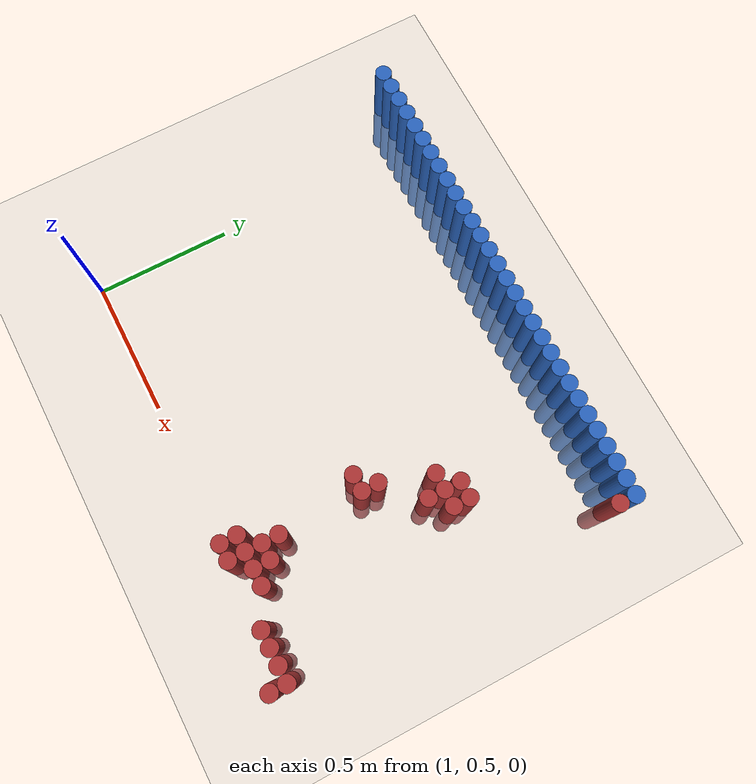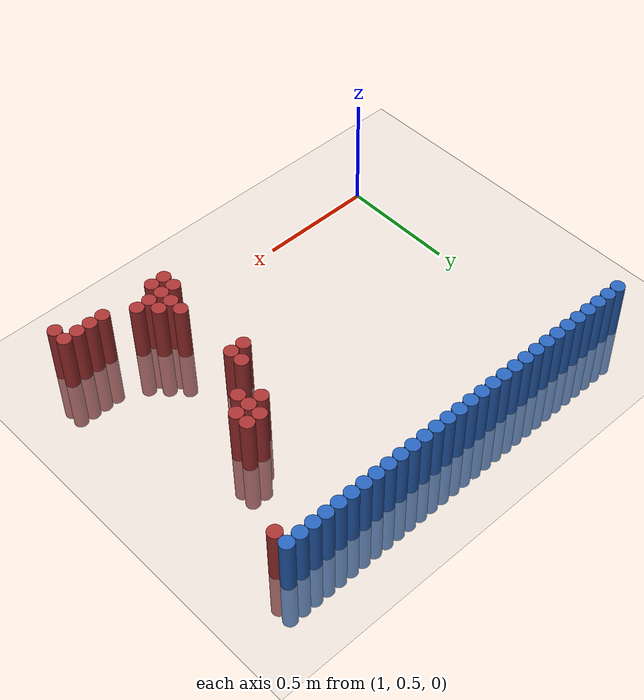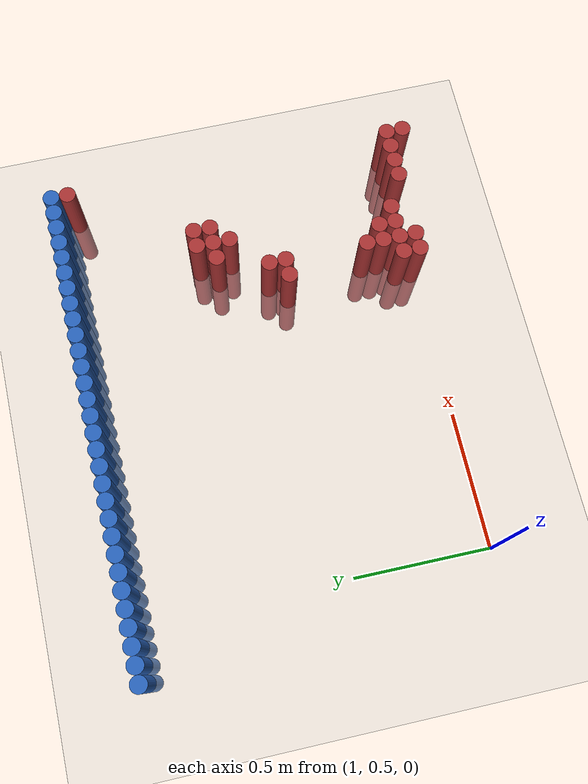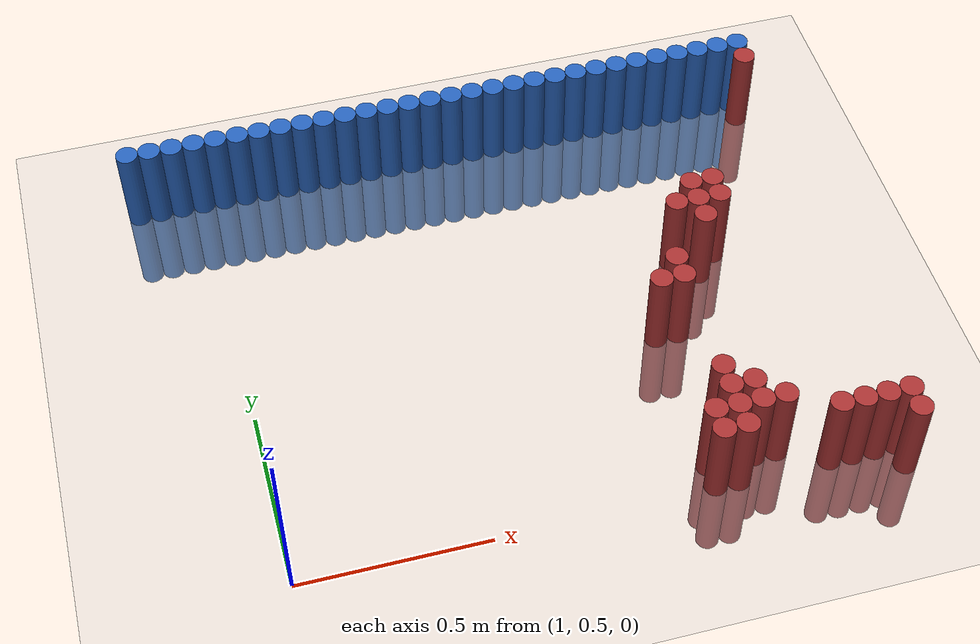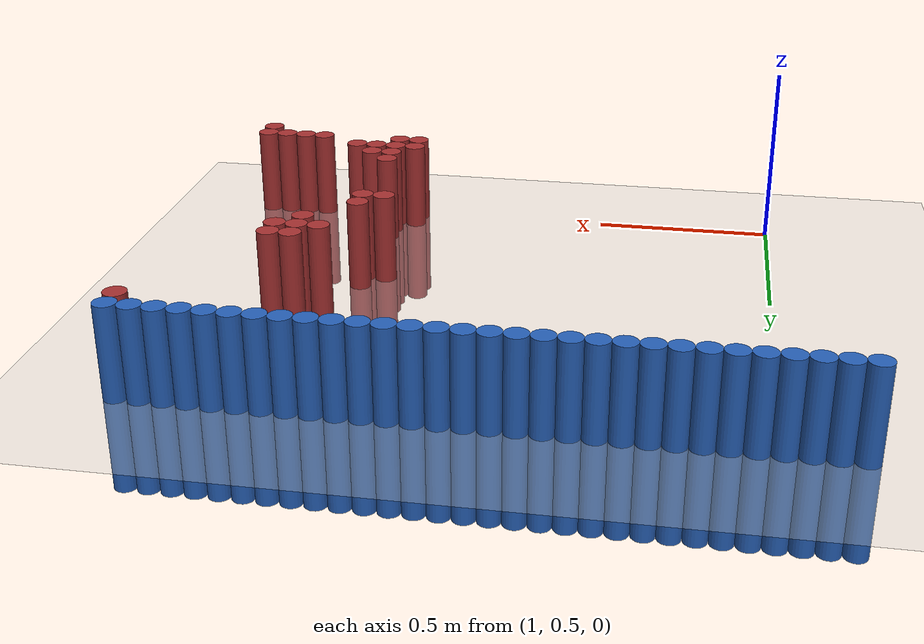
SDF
<sdf version="1.6">
 <world name="default">
  <model name="ground_plane">
   <static>1</static>
   <link name="link">
    <collision name="collision">
     <geometry><plane><normal>0 0 1</normal><size>100 100</size></plane></geometry>
     <surface><friction><ode><mu>100</mu><mu2>50</mu2></ode></friction></surface>
    </collision>
    <visual name="visual">
     <cast_shadows>0</cast_shadows>
     <geometry><plane><normal>0 0 1</normal><size>100 100</size></plane></geometry>
     <material>
      <script><uri>file://media/materials/scripts/gazebo.material</uri><name>Gazebo/Grey</name></script>
     </material>
    </visual>
   </link>
  </model>
  <model name="unit_cylinder_54">
   <static>1</static>
   <pose>0.810000 1.770000 0.000000 0.000000 0.000000 0.000000</pose>
   <link name="link">
    <inertial>
     <mass>1</mass>
     <inertia><ixx>0.145833</ixx><ixy>0</ixy><ixz>0</ixz><iyy>0.145833</iyy><iyz>0</iyz><izz>0.125</izz></inertia>
    </inertial>
    <collision name="collision">
     <geometry><cylinder><radius>0.030000</radius><length>0.5</length></cylinder></geometry>
    </collision>
    <visual name="visual">
     <geometry><cylinder><radius>0.030000</radius><length>0.5</length></cylinder></geometry>
     <material>
      <ambient>0.152000 0.379000 0.720000 1</ambient>
      <diffuse>0.152000 0.379000 0.720000 1</diffuse>
     </material>
     <material>
      <script><name>Gazebo/Grey</name><uri>file://media/materials/scripts/gazebo.material</uri></script>
     </material>
    </visual>
   </link>
  </model>
  <model name="unit_cylinder_56">
   <static>1</static>
   <pose>0.870000 1.770000 0.000000 0.000000 0.000000 0.000000</pose>
   <link name="link">
    <inertial>
     <mass>1</mass>
     <inertia><ixx>0.145833</ixx><ixy>0</ixy><ixz>0</ixz><iyy>0.145833</iyy><iyz>0</iyz><izz>0.125</izz></inertia>
    </inertial>
    <collision name="collision">
     <geometry><cylinder><radius>0.030000</radius><length>0.5</length></cylinder></geometry>
    </collision>
    <visual name="visual">
     <geometry><cylinder><radius>0.030000</radius><length>0.5</length></cylinder></geometry>
     <material>
      <ambient>0.152000 0.379000 0.720000 1</ambient>
      <diffuse>0.152000 0.379000 0.720000 1</diffuse>
     </material>
     <material>
      <script><name>Gazebo/Grey</name><uri>file://media/materials/scripts/gazebo.material</uri></script>
     </material>
    </visual>
   </link>
  </model>
  <model name="unit_cylinder_58">
   <static>1</static>
   <pose>0.930000 1.770000 0.000000 0.000000 0.000000 0.000000</pose>
   <link name="link">
    <inertial>
     <mass>1</mass>
     <inertia><ixx>0.145833</ixx><ixy>0</ixy><ixz>0</ixz><iyy>0.145833</iyy><iyz>0</iyz><izz>0.125</izz></inertia>
    </inertial>
    <collision name="collision">
     <geometry><cylinder><radius>0.030000</radius><length>0.5</length></cylinder></geometry>
    </collision>
    <visual name="visual">
     <geometry><cylinder><radius>0.030000</radius><length>0.5</length></cylinder></geometry>
     <material>
      <ambient>0.152000 0.379000 0.720000 1</ambient>
      <diffuse>0.152000 0.379000 0.720000 1</diffuse>
     </material>
     <material>
      <script><name>Gazebo/Grey</name><uri>file://media/materials/scripts/gazebo.material</uri></script>
     </material>
    </visual>
   </link>
  </model>
  <model name="unit_cylinder_60">
   <static>1</static>
   <pose>0.990000 1.770000 0.000000 0.000000 0.000000 0.000000</pose>
   <link name="link">
    <inertial>
     <mass>1</mass>
     <inertia><ixx>0.145833</ixx><ixy>0</ixy><ixz>0</ixz><iyy>0.145833</iyy><iyz>0</iyz><izz>0.125</izz></inertia>
    </inertial>
    <collision name="collision">
     <geometry><cylinder><radius>0.030000</radius><length>0.5</length></cylinder></geometry>
    </collision>
    <visual name="visual">
     <geometry><cylinder><radius>0.030000</radius><length>0.5</length></cylinder></geometry>
     <material>
      <ambient>0.152000 0.379000 0.720000 1</ambient>
      <diffuse>0.152000 0.379000 0.720000 1</diffuse>
     </material>
     <material>
      <script><name>Gazebo/Grey</name><uri>file://media/materials/scripts/gazebo.material</uri></script>
     </material>
    </visual>
   </link>
  </model>
  <model name="unit_cylinder_62">
   <static>1</static>
   <pose>1.050000 1.770000 0.000000 0.000000 0.000000 0.000000</pose>
   <link name="link">
    <inertial>
     <mass>1</mass>
     <inertia><ixx>0.145833</ixx><ixy>0</ixy><ixz>0</ixz><iyy>0.145833</iyy><iyz>0</iyz><izz>0.125</izz></inertia>
    </inertial>
    <collision name="collision">
     <geometry><cylinder><radius>0.030000</radius><length>0.5</length></cylinder></geometry>
    </collision>
    <visual name="visual">
     <geometry><cylinder><radius>0.030000</radius><length>0.5</length></cylinder></geometry>
     <material>
      <ambient>0.152000 0.379000 0.720000 1</ambient>
      <diffuse>0.152000 0.379000 0.720000 1</diffuse>
     </material>
     <material>
      <script><name>Gazebo/Grey</name><uri>file://media/materials/scripts/gazebo.material</uri></script>
     </material>
    </visual>
   </link>
  </model>
  <model name="unit_cylinder_64">
   <static>1</static>
   <pose>1.110000 1.770000 0.000000 0.000000 0.000000 0.000000</pose>
   <link name="link">
    <inertial>
     <mass>1</mass>
     <inertia><ixx>0.145833</ixx><ixy>0</ixy><ixz>0</ixz><iyy>0.145833</iyy><iyz>0</iyz><izz>0.125</izz></inertia>
    </inertial>
    <collision name="collision">
     <geometry><cylinder><radius>0.030000</radius><length>0.5</length></cylinder></geometry>
    </collision>
    <visual name="visual">
     <geometry><cylinder><radius>0.030000</radius><length>0.5</length></cylinder></geometry>
     <material>
      <ambient>0.152000 0.379000 0.720000 1</ambient>
      <diffuse>0.152000 0.379000 0.720000 1</diffuse>
     </material>
     <material>
      <script><name>Gazebo/Grey</name><uri>file://media/materials/scripts/gazebo.material</uri></script>
     </material>
    </visual>
   </link>
  </model>
  <model name="unit_cylinder_66">
   <static>1</static>
   <pose>1.170000 1.770000 0.000000 0.000000 0.000000 0.000000</pose>
   <link name="link">
    <inertial>
     <mass>1</mass>
     <inertia><ixx>0.145833</ixx><ixy>0</ixy><ixz>0</ixz><iyy>0.145833</iyy><iyz>0</iyz><izz>0.125</izz></inertia>
    </inertial>
    <collision name="collision">
     <geometry><cylinder><radius>0.030000</radius><length>0.5</length></cylinder></geometry>
    </collision>
    <visual name="visual">
     <geometry><cylinder><radius>0.030000</radius><length>0.5</length></cylinder></geometry>
     <material>
      <ambient>0.152000 0.379000 0.720000 1</ambient>
      <diffuse>0.152000 0.379000 0.720000 1</diffuse>
     </material>
     <material>
      <script><name>Gazebo/Grey</name><uri>file://media/materials/scripts/gazebo.material</uri></script>
     </material>
    </visual>
   </link>
  </model>
  <model name="unit_cylinder_68">
   <static>1</static>
   <pose>1.230000 1.770000 0.000000 0.000000 0.000000 0.000000</pose>
   <link name="link">
    <inertial>
     <mass>1</mass>
     <inertia><ixx>0.145833</ixx><ixy>0</ixy><ixz>0</ixz><iyy>0.145833</iyy><iyz>0</iyz><izz>0.125</izz></inertia>
    </inertial>
    <collision name="collision">
     <geometry><cylinder><radius>0.030000</radius><length>0.5</length></cylinder></geometry>
    </collision>
    <visual name="visual">
     <geometry><cylinder><radius>0.030000</radius><length>0.5</length></cylinder></geometry>
     <material>
      <ambient>0.152000 0.379000 0.720000 1</ambient>
      <diffuse>0.152000 0.379000 0.720000 1</diffuse>
     </material>
     <material>
      <script><name>Gazebo/Grey</name><uri>file://media/materials/scripts/gazebo.material</uri></script>
     </material>
    </visual>
   </link>
  </model>
  <model name="unit_cylinder_70">
   <static>1</static>
   <pose>1.290000 1.770000 0.000000 0.000000 0.000000 0.000000</pose>
   <link name="link">
    <inertial>
     <mass>1</mass>
     <inertia><ixx>0.145833</ixx><ixy>0</ixy><ixz>0</ixz><iyy>0.145833</iyy><iyz>0</iyz><izz>0.125</izz></inertia>
    </inertial>
    <collision name="collision">
     <geometry><cylinder><radius>0.030000</radius><length>0.5</length></cylinder></geometry>
    </collision>
    <visual name="visual">
     <geometry><cylinder><radius>0.030000</radius><length>0.5</length></cylinder></geometry>
     <material>
      <ambient>0.152000 0.379000 0.720000 1</ambient>
      <diffuse>0.152000 0.379000 0.720000 1</diffuse>
     </material>
     <material>
      <script><name>Gazebo/Grey</name><uri>file://media/materials/scripts/gazebo.material</uri></script>
     </material>
    </visual>
   </link>
  </model>
  <model name="unit_cylinder_72">
   <static>1</static>
   <pose>1.350000 1.770000 0.000000 0.000000 0.000000 0.000000</pose>
   <link name="link">
    <inertial>
     <mass>1</mass>
     <inertia><ixx>0.145833</ixx><ixy>0</ixy><ixz>0</ixz><iyy>0.145833</iyy><iyz>0</iyz><izz>0.125</izz></inertia>
    </inertial>
    <collision name="collision">
     <geometry><cylinder><radius>0.030000</radius><length>0.5</length></cylinder></geometry>
    </collision>
    <visual name="visual">
     <geometry><cylinder><radius>0.030000</radius><length>0.5</length></cylinder></geometry>
     <material>
      <ambient>0.152000 0.379000 0.720000 1</ambient>
      <diffuse>0.152000 0.379000 0.720000 1</diffuse>
     </material>
     <material>
      <script><name>Gazebo/Grey</name><uri>file://media/materials/scripts/gazebo.material</uri></script>
     </material>
    </visual>
   </link>
  </model>
  <model name="unit_cylinder_74">
   <static>1</static>
   <pose>1.410000 1.770000 0.000000 0.000000 0.000000 0.000000</pose>
   <link name="link">
    <inertial>
     <mass>1</mass>
     <inertia><ixx>0.145833</ixx><ixy>0</ixy><ixz>0</ixz><iyy>0.145833</iyy><iyz>0</iyz><izz>0.125</izz></inertia>
    </inertial>
    <collision name="collision">
     <geometry><cylinder><radius>0.030000</radius><length>0.5</length></cylinder></geometry>
    </collision>
    <visual name="visual">
     <geometry><cylinder><radius>0.030000</radius><length>0.5</length></cylinder></geometry>
     <material>
      <ambient>0.152000 0.379000 0.720000 1</ambient>
      <diffuse>0.152000 0.379000 0.720000 1</diffuse>
     </material>
     <material>
      <script><name>Gazebo/Grey</name><uri>file://media/materials/scripts/gazebo.material</uri></script>
     </material>
    </visual>
   </link>
  </model>
  <model name="unit_cylinder_76">
   <static>1</static>
   <pose>1.470000 1.770000 0.000000 0.000000 0.000000 0.000000</pose>
   <link name="link">
    <inertial>
     <mass>1</mass>
     <inertia><ixx>0.145833</ixx><ixy>0</ixy><ixz>0</ixz><iyy>0.145833</iyy><iyz>0</iyz><izz>0.125</izz></inertia>
    </inertial>
    <collision name="collision">
     <geometry><cylinder><radius>0.030000</radius><length>0.5</length></cylinder></geometry>
    </collision>
    <visual name="visual">
     <geometry><cylinder><radius>0.030000</radius><length>0.5</length></cylinder></geometry>
     <material>
      <ambient>0.152000 0.379000 0.720000 1</ambient>
      <diffuse>0.152000 0.379000 0.720000 1</diffuse>
     </material>
     <material>
      <script><name>Gazebo/Grey</name><uri>file://media/materials/scripts/gazebo.material</uri></script>
     </material>
    </visual>
   </link>
  </model>
  <model name="unit_cylinder_78">
   <static>1</static>
   <pose>1.530000 1.770000 0.000000 0.000000 0.000000 0.000000</pose>
   <link name="link">
    <inertial>
     <mass>1</mass>
     <inertia><ixx>0.145833</ixx><ixy>0</ixy><ixz>0</ixz><iyy>0.145833</iyy><iyz>0</iyz><izz>0.125</izz></inertia>
    </inertial>
    <collision name="collision">
     <geometry><cylinder><radius>0.030000</radius><length>0.5</length></cylinder></geometry>
    </collision>
    <visual name="visual">
     <geometry><cylinder><radius>0.030000</radius><length>0.5</length></cylinder></geometry>
     <material>
      <ambient>0.152000 0.379000 0.720000 1</ambient>
      <diffuse>0.152000 0.379000 0.720000 1</diffuse>
     </material>
     <material>
      <script><name>Gazebo/Grey</name><uri>file://media/materials/scripts/gazebo.material</uri></script>
     </material>
    </visual>
   </link>
  </model>
  <model name="unit_cylinder_80">
   <static>1</static>
   <pose>1.590000 1.770000 0.000000 0.000000 0.000000 0.000000</pose>
   <link name="link">
    <inertial>
     <mass>1</mass>
     <inertia><ixx>0.145833</ixx><ixy>0</ixy><ixz>0</ixz><iyy>0.145833</iyy><iyz>0</iyz><izz>0.125</izz></inertia>
    </inertial>
    <collision name="collision">
     <geometry><cylinder><radius>0.030000</radius><length>0.5</length></cylinder></geometry>
    </collision>
    <visual name="visual">
     <geometry><cylinder><radius>0.030000</radius><length>0.5</length></cylinder></geometry>
     <material>
      <ambient>0.152000 0.379000 0.720000 1</ambient>
      <diffuse>0.152000 0.379000 0.720000 1</diffuse>
     </material>
     <material>
      <script><name>Gazebo/Grey</name><uri>file://media/materials/scripts/gazebo.material</uri></script>
     </material>
    </visual>
   </link>
  </model>
  <model name="unit_cylinder_82">
   <static>1</static>
   <pose>1.650000 1.770000 0.000000 0.000000 0.000000 0.000000</pose>
   <link name="link">
    <inertial>
     <mass>1</mass>
     <inertia><ixx>0.145833</ixx><ixy>0</ixy><ixz>0</ixz><iyy>0.145833</iyy><iyz>0</iyz><izz>0.125</izz></inertia>
    </inertial>
    <collision name="collision">
     <geometry><cylinder><radius>0.030000</radius><length>0.5</length></cylinder></geometry>
    </collision>
    <visual name="visual">
     <geometry><cylinder><radius>0.030000</radius><length>0.5</length></cylinder></geometry>
     <material>
      <ambient>0.152000 0.379000 0.720000 1</ambient>
      <diffuse>0.152000 0.379000 0.720000 1</diffuse>
     </material>
     <material>
      <script><name>Gazebo/Grey</name><uri>file://media/materials/scripts/gazebo.material</uri></script>
     </material>
    </visual>
   </link>
  </model>
  <model name="unit_cylinder_84">
   <static>1</static>
   <pose>1.710000 1.770000 0.000000 0.000000 0.000000 0.000000</pose>
   <link name="link">
    <inertial>
     <mass>1</mass>
     <inertia><ixx>0.145833</ixx><ixy>0</ixy><ixz>0</ixz><iyy>0.145833</iyy><iyz>0</iyz><izz>0.125</izz></inertia>
    </inertial>
    <collision name="collision">
     <geometry><cylinder><radius>0.030000</radius><length>0.5</length></cylinder></geometry>
    </collision>
    <visual name="visual">
     <geometry><cylinder><radius>0.030000</radius><length>0.5</length></cylinder></geometry>
     <material>
      <ambient>0.152000 0.379000 0.720000 1</ambient>
      <diffuse>0.152000 0.379000 0.720000 1</diffuse>
     </material>
     <material>
      <script><name>Gazebo/Grey</name><uri>file://media/materials/scripts/gazebo.material</uri></script>
     </material>
    </visual>
   </link>
  </model>
  <model name="unit_cylinder_86">
   <static>1</static>
   <pose>1.770000 1.770000 0.000000 0.000000 0.000000 0.000000</pose>
   <link name="link">
    <inertial>
     <mass>1</mass>
     <inertia><ixx>0.145833</ixx><ixy>0</ixy><ixz>0</ixz><iyy>0.145833</iyy><iyz>0</iyz><izz>0.125</izz></inertia>
    </inertial>
    <collision name="collision">
     <geometry><cylinder><radius>0.030000</radius><length>0.5</length></cylinder></geometry>
    </collision>
    <visual name="visual">
     <geometry><cylinder><radius>0.030000</radius><length>0.5</length></cylinder></geometry>
     <material>
      <ambient>0.152000 0.379000 0.720000 1</ambient>
      <diffuse>0.152000 0.379000 0.720000 1</diffuse>
     </material>
     <material>
      <script><name>Gazebo/Grey</name><uri>file://media/materials/scripts/gazebo.material</uri></script>
     </material>
    </visual>
   </link>
  </model>
  <model name="unit_cylinder_88">
   <static>1</static>
   <pose>1.830000 1.770000 0.000000 0.000000 0.000000 0.000000</pose>
   <link name="link">
    <inertial>
     <mass>1</mass>
     <inertia><ixx>0.145833</ixx><ixy>0</ixy><ixz>0</ixz><iyy>0.145833</iyy><iyz>0</iyz><izz>0.125</izz></inertia>
    </inertial>
    <collision name="collision">
     <geometry><cylinder><radius>0.030000</radius><length>0.5</length></cylinder></geometry>
    </collision>
    <visual name="visual">
     <geometry><cylinder><radius>0.030000</radius><length>0.5</length></cylinder></geometry>
     <material>
      <ambient>0.152000 0.379000 0.720000 1</ambient>
      <diffuse>0.152000 0.379000 0.720000 1</diffuse>
     </material>
     <material>
      <script><name>Gazebo/Grey</name><uri>file://media/materials/scripts/gazebo.material</uri></script>
     </material>
    </visual>
   </link>
  </model>
  <model name="unit_cylinder_90">
   <static>1</static>
   <pose>1.890000 1.770000 0.000000 0.000000 0.000000 0.000000</pose>
   <link name="link">
    <inertial>
     <mass>1</mass>
     <inertia><ixx>0.145833</ixx><ixy>0</ixy><ixz>0</ixz><iyy>0.145833</iyy><iyz>0</iyz><izz>0.125</izz></inertia>
    </inertial>
    <collision name="collision">
     <geometry><cylinder><radius>0.030000</radius><length>0.5</length></cylinder></geometry>
    </collision>
    <visual name="visual">
     <geometry><cylinder><radius>0.030000</radius><length>0.5</length></cylinder></geometry>
     <material>
      <ambient>0.152000 0.379000 0.720000 1</ambient>
      <diffuse>0.152000 0.379000 0.720000 1</diffuse>
     </material>
     <material>
      <script><name>Gazebo/Grey</name><uri>file://media/materials/scripts/gazebo.material</uri></script>
     </material>
    </visual>
   </link>
  </model>
  <model name="unit_cylinder_92">
   <static>1</static>
   <pose>1.950000 1.770000 0.000000 0.000000 0.000000 0.000000</pose>
   <link name="link">
    <inertial>
     <mass>1</mass>
     <inertia><ixx>0.145833</ixx><ixy>0</ixy><ixz>0</ixz><iyy>0.145833</iyy><iyz>0</iyz><izz>0.125</izz></inertia>
    </inertial>
    <collision name="collision">
     <geometry><cylinder><radius>0.030000</radius><length>0.5</length></cylinder></geometry>
    </collision>
    <visual name="visual">
     <geometry><cylinder><radius>0.030000</radius><length>0.5</length></cylinder></geometry>
     <material>
      <ambient>0.152000 0.379000 0.720000 1</ambient>
      <diffuse>0.152000 0.379000 0.720000 1</diffuse>
     </material>
     <material>
      <script><name>Gazebo/Grey</name><uri>file://media/materials/scripts/gazebo.material</uri></script>
     </material>
    </visual>
   </link>
  </model>
  <model name="unit_cylinder_94">
   <static>1</static>
   <pose>2.010000 1.770000 0.000000 0.000000 0.000000 0.000000</pose>
   <link name="link">
    <inertial>
     <mass>1</mass>
     <inertia><ixx>0.145833</ixx><ixy>0</ixy><ixz>0</ixz><iyy>0.145833</iyy><iyz>0</iyz><izz>0.125</izz></inertia>
    </inertial>
    <collision name="collision">
     <geometry><cylinder><radius>0.030000</radius><length>0.5</length></cylinder></geometry>
    </collision>
    <visual name="visual">
     <geometry><cylinder><radius>0.030000</radius><length>0.5</length></cylinder></geometry>
     <material>
      <ambient>0.152000 0.379000 0.720000 1</ambient>
      <diffuse>0.152000 0.379000 0.720000 1</diffuse>
     </material>
     <material>
      <script><name>Gazebo/Grey</name><uri>file://media/materials/scripts/gazebo.material</uri></script>
     </material>
    </visual>
   </link>
  </model>
  <model name="unit_cylinder_95">
   <static>1</static>
   <pose>2.070000 1.770000 0.000000 0.000000 0.000000 0.000000</pose>
   <link name="link">
    <inertial>
     <mass>1</mass>
     <inertia><ixx>0.145833</ixx><ixy>0</ixy><ixz>0</ixz><iyy>0.145833</iyy><iyz>0</iyz><izz>0.125</izz></inertia>
    </inertial>
    <collision name="collision">
     <geometry><cylinder><radius>0.030000</radius><length>0.5</length></cylinder></geometry>
    </collision>
    <visual name="visual">
     <geometry><cylinder><radius>0.030000</radius><length>0.5</length></cylinder></geometry>
     <material>
      <ambient>0.152000 0.379000 0.720000 1</ambient>
      <diffuse>0.152000 0.379000 0.720000 1</diffuse>
     </material>
     <material>
      <script><name>Gazebo/Grey</name><uri>file://media/materials/scripts/gazebo.material</uri></script>
     </material>
    </visual>
   </link>
  </model>
  <model name="unit_cylinder_96">
   <static>1</static>
   <pose>2.130000 1.770000 0.000000 0.000000 0.000000 0.000000</pose>
   <link name="link">
    <inertial>
     <mass>1</mass>
     <inertia><ixx>0.145833</ixx><ixy>0</ixy><ixz>0</ixz><iyy>0.145833</iyy><iyz>0</iyz><izz>0.125</izz></inertia>
    </inertial>
    <collision name="collision">
     <geometry><cylinder><radius>0.030000</radius><length>0.5</length></cylinder></geometry>
    </collision>
    <visual name="visual">
     <geometry><cylinder><radius>0.030000</radius><length>0.5</length></cylinder></geometry>
     <material>
      <ambient>0.152000 0.379000 0.720000 1</ambient>
      <diffuse>0.152000 0.379000 0.720000 1</diffuse>
     </material>
     <material>
      <script><name>Gazebo/Grey</name><uri>file://media/materials/scripts/gazebo.material</uri></script>
     </material>
    </visual>
   </link>
  </model>
  <model name="unit_cylinder_97">
   <static>1</static>
   <pose>2.190000 1.770000 0.000000 0.000000 0.000000 0.000000</pose>
   <link name="link">
    <inertial>
     <mass>1</mass>
     <inertia><ixx>0.145833</ixx><ixy>0</ixy><ixz>0</ixz><iyy>0.145833</iyy><iyz>0</iyz><izz>0.125</izz></inertia>
    </inertial>
    <collision name="collision">
     <geometry><cylinder><radius>0.030000</radius><length>0.5</length></cylinder></geometry>
    </collision>
    <visual name="visual">
     <geometry><cylinder><radius>0.030000</radius><length>0.5</length></cylinder></geometry>
     <material>
      <ambient>0.152000 0.379000 0.720000 1</ambient>
      <diffuse>0.152000 0.379000 0.720000 1</diffuse>
     </material>
     <material>
      <script><name>Gazebo/Grey</name><uri>file://media/materials/scripts/gazebo.material</uri></script>
     </material>
    </visual>
   </link>
  </model>
  <model name="unit_cylinder_98">
   <static>1</static>
   <pose>2.250000 1.770000 0.000000 0.000000 0.000000 0.000000</pose>
   <link name="link">
    <inertial>
     <mass>1</mass>
     <inertia><ixx>0.145833</ixx><ixy>0</ixy><ixz>0</ixz><iyy>0.145833</iyy><iyz>0</iyz><izz>0.125</izz></inertia>
    </inertial>
    <collision name="collision">
     <geometry><cylinder><radius>0.030000</radius><length>0.5</length></cylinder></geometry>
    </collision>
    <visual name="visual">
     <geometry><cylinder><radius>0.030000</radius><length>0.5</length></cylinder></geometry>
     <material>
      <ambient>0.152000 0.379000 0.720000 1</ambient>
      <diffuse>0.152000 0.379000 0.720000 1</diffuse>
     </material>
     <material>
      <script><name>Gazebo/Grey</name><uri>file://media/materials/scripts/gazebo.material</uri></script>
     </material>
    </visual>
   </link>
  </model>
  <model name="unit_cylinder_99">
   <static>1</static>
   <pose>2.310000 1.770000 0.000000 0.000000 0.000000 0.000000</pose>
   <link name="link">
    <inertial>
     <mass>1</mass>
     <inertia><ixx>0.145833</ixx><ixy>0</ixy><ixz>0</ixz><iyy>0.145833</iyy><iyz>0</iyz><izz>0.125</izz></inertia>
    </inertial>
    <collision name="collision">
     <geometry><cylinder><radius>0.030000</radius><length>0.5</length></cylinder></geometry>
    </collision>
    <visual name="visual">
     <geometry><cylinder><radius>0.030000</radius><length>0.5</length></cylinder></geometry>
     <material>
      <ambient>0.152000 0.379000 0.720000 1</ambient>
      <diffuse>0.152000 0.379000 0.720000 1</diffuse>
     </material>
     <material>
      <script><name>Gazebo/Grey</name><uri>file://media/materials/scripts/gazebo.material</uri></script>
     </material>
    </visual>
   </link>
  </model>
  <model name="unit_cylinder_100">
   <static>1</static>
   <pose>2.370000 1.770000 0.000000 0.000000 0.000000 0.000000</pose>
   <link name="link">
    <inertial>
     <mass>1</mass>
     <inertia><ixx>0.145833</ixx><ixy>0</ixy><ixz>0</ixz><iyy>0.145833</iyy><iyz>0</iyz><izz>0.125</izz></inertia>
    </inertial>
    <collision name="collision">
     <geometry><cylinder><radius>0.030000</radius><length>0.5</length></cylinder></geometry>
    </collision>
    <visual name="visual">
     <geometry><cylinder><radius>0.030000</radius><length>0.5</length></cylinder></geometry>
     <material>
      <ambient>0.152000 0.379000 0.720000 1</ambient>
      <diffuse>0.152000 0.379000 0.720000 1</diffuse>
     </material>
     <material>
      <script><name>Gazebo/Grey</name><uri>file://media/materials/scripts/gazebo.material</uri></script>
     </material>
    </visual>
   </link>
  </model>
  <model name="unit_cylinder_101">
   <static>1</static>
   <pose>2.430000 1.770000 0.000000 0.000000 0.000000 0.000000</pose>
   <link name="link">
    <inertial>
     <mass>1</mass>
     <inertia><ixx>0.145833</ixx><ixy>0</ixy><ixz>0</ixz><iyy>0.145833</iyy><iyz>0</iyz><izz>0.125</izz></inertia>
    </inertial>
    <collision name="collision">
     <geometry><cylinder><radius>0.030000</radius><length>0.5</length></cylinder></geometry>
    </collision>
    <visual name="visual">
     <geometry><cylinder><radius>0.030000</radius><length>0.5</length></cylinder></geometry>
     <material>
      <ambient>0.152000 0.379000 0.720000 1</ambient>
      <diffuse>0.152000 0.379000 0.720000 1</diffuse>
     </material>
     <material>
      <script><name>Gazebo/Grey</name><uri>file://media/materials/scripts/gazebo.material</uri></script>
     </material>
    </visual>
   </link>
  </model>
  <model name="unit_cylinder_102">
   <static>1</static>
   <pose>2.490000 1.770000 0.000000 0.000000 0.000000 0.000000</pose>
   <link name="link">
    <inertial>
     <mass>1</mass>
     <inertia><ixx>0.145833</ixx><ixy>0</ixy><ixz>0</ixz><iyy>0.145833</iyy><iyz>0</iyz><izz>0.125</izz></inertia>
    </inertial>
    <collision name="collision">
     <geometry><cylinder><radius>0.030000</radius><length>0.5</length></cylinder></geometry>
    </collision>
    <visual name="visual">
     <geometry><cylinder><radius>0.030000</radius><length>0.5</length></cylinder></geometry>
     <material>
      <ambient>0.152000 0.379000 0.720000 1</ambient>
      <diffuse>0.152000 0.379000 0.720000 1</diffuse>
     </material>
     <material>
      <script><name>Gazebo/Grey</name><uri>file://media/materials/scripts/gazebo.material</uri></script>
     </material>
    </visual>
   </link>
  </model>
  <model name="unit_cylinder_103">
   <static>1</static>
   <pose>2.550000 1.770000 0.000000 0.000000 0.000000 0.000000</pose>
   <link name="link">
    <inertial>
     <mass>1</mass>
     <inertia><ixx>0.145833</ixx><ixy>0</ixy><ixz>0</ixz><iyy>0.145833</iyy><iyz>0</iyz><izz>0.125</izz></inertia>
    </inertial>
    <collision name="collision">
     <geometry><cylinder><radius>0.030000</radius><length>0.5</length></cylinder></geometry>
    </collision>
    <visual name="visual">
     <geometry><cylinder><radius>0.030000</radius><length>0.5</length></cylinder></geometry>
     <material>
      <ambient>0.152000 0.379000 0.720000 1</ambient>
      <diffuse>0.152000 0.379000 0.720000 1</diffuse>
     </material>
     <material>
      <script><name>Gazebo/Grey</name><uri>file://media/materials/scripts/gazebo.material</uri></script>
     </material>
    </visual>
   </link>
  </model>
  <model name="unit_cylinder_125">
   <static>1</static>
   <pose>2.550000 1.710000 0.000000 0.000000 0.000000 0.000000</pose>
   <link name="link">
    <inertial>
     <mass>1</mass>
     <inertia><ixx>0.145833</ixx><ixy>0</ixy><ixz>0</ixz><iyy>0.145833</iyy><iyz>0</iyz><izz>0.125</izz></inertia>
    </inertial>
    <collision name="collision">
     <geometry><cylinder><radius>0.030000</radius><length>0.5</length></cylinder></geometry>
    </collision>
    <visual name="visual">
     <geometry><cylinder><radius>0.030000</radius><length>0.5</length></cylinder></geometry>
     <material>
      <ambient>0.648000 0.192000 0.192000 1</ambient>
      <diffuse>0.648000 0.192000 0.192000 1</diffuse>
     </material>
     <material>
      <script><name>Gazebo/Grey</name><uri>file://media/materials/scripts/gazebo.material</uri></script>
     </material>
    </visual>
   </link>
  </model>
  <model name="unit_cylinder_163">
   <static>1</static>
   <pose>2.250000 1.290000 0.000000 0.000000 0.000000 0.000000</pose>
   <link name="link">
    <inertial>
     <mass>1</mass>
     <inertia><ixx>0.145833</ixx><ixy>0</ixy><ixz>0</ixz><iyy>0.145833</iyy><iyz>0</iyz><izz>0.125</izz></inertia>
    </inertial>
    <collision name="collision">
     <geometry><cylinder><radius>0.030000</radius><length>0.5</length></cylinder></geometry>
    </collision>
    <visual name="visual">
     <geometry><cylinder><radius>0.030000</radius><length>0.5</length></cylinder></geometry>
     <material>
      <ambient>0.648000 0.192000 0.192000 1</ambient>
      <diffuse>0.648000 0.192000 0.192000 1</diffuse>
     </material>
     <material>
      <script><name>Gazebo/Grey</name><uri>file://media/materials/scripts/gazebo.material</uri></script>
     </material>
    </visual>
   </link>
  </model>
  <model name="unit_cylinder_164">
   <static>1</static>
   <pose>2.310000 1.290000 0.000000 0.000000 0.000000 0.000000</pose>
   <link name="link">
    <inertial>
     <mass>1</mass>
     <inertia><ixx>0.145833</ixx><ixy>0</ixy><ixz>0</ixz><iyy>0.145833</iyy><iyz>0</iyz><izz>0.125</izz></inertia>
    </inertial>
    <collision name="collision">
     <geometry><cylinder><radius>0.030000</radius><length>0.5</length></cylinder></geometry>
    </collision>
    <visual name="visual">
     <geometry><cylinder><radius>0.030000</radius><length>0.5</length></cylinder></geometry>
     <material>
      <ambient>0.648000 0.192000 0.192000 1</ambient>
      <diffuse>0.648000 0.192000 0.192000 1</diffuse>
     </material>
     <material>
      <script><name>Gazebo/Grey</name><uri>file://media/materials/scripts/gazebo.material</uri></script>
     </material>
    </visual>
   </link>
  </model>
  <model name="unit_cylinder_171">
   <static>1</static>
   <pose>2.190000 1.230000 0.000000 0.000000 0.000000 0.000000</pose>
   <link name="link">
    <inertial>
     <mass>1</mass>
     <inertia><ixx>0.145833</ixx><ixy>0</ixy><ixz>0</ixz><iyy>0.145833</iyy><iyz>0</iyz><izz>0.125</izz></inertia>
    </inertial>
    <collision name="collision">
     <geometry><cylinder><radius>0.030000</radius><length>0.5</length></cylinder></geometry>
    </collision>
    <visual name="visual">
     <geometry><cylinder><radius>0.030000</radius><length>0.5</length></cylinder></geometry>
     <material>
      <ambient>0.648000 0.192000 0.192000 1</ambient>
      <diffuse>0.648000 0.192000 0.192000 1</diffuse>
     </material>
     <material>
      <script><name>Gazebo/Grey</name><uri>file://media/materials/scripts/gazebo.material</uri></script>
     </material>
    </visual>
   </link>
  </model>
  <model name="unit_cylinder_172">
   <static>1</static>
   <pose>2.250000 1.230000 0.000000 0.000000 0.000000 0.000000</pose>
   <link name="link">
    <inertial>
     <mass>1</mass>
     <inertia><ixx>0.145833</ixx><ixy>0</ixy><ixz>0</ixz><iyy>0.145833</iyy><iyz>0</iyz><izz>0.125</izz></inertia>
    </inertial>
    <collision name="collision">
     <geometry><cylinder><radius>0.030000</radius><length>0.5</length></cylinder></geometry>
    </collision>
    <visual name="visual">
     <geometry><cylinder><radius>0.030000</radius><length>0.5</length></cylinder></geometry>
     <material>
      <ambient>0.648000 0.192000 0.192000 1</ambient>
      <diffuse>0.648000 0.192000 0.192000 1</diffuse>
     </material>
     <material>
      <script><name>Gazebo/Grey</name><uri>file://media/materials/scripts/gazebo.material</uri></script>
     </material>
    </visual>
   </link>
  </model>
  <model name="unit_cylinder_173">
   <static>1</static>
   <pose>2.310000 1.230000 0.000000 0.000000 0.000000 0.000000</pose>
   <link name="link">
    <inertial>
     <mass>1</mass>
     <inertia><ixx>0.145833</ixx><ixy>0</ixy><ixz>0</ixz><iyy>0.145833</iyy><iyz>0</iyz><izz>0.125</izz></inertia>
    </inertial>
    <collision name="collision">
     <geometry><cylinder><radius>0.030000</radius><length>0.5</length></cylinder></geometry>
    </collision>
    <visual name="visual">
     <geometry><cylinder><radius>0.030000</radius><length>0.5</length></cylinder></geometry>
     <material>
      <ambient>0.648000 0.192000 0.192000 1</ambient>
      <diffuse>0.648000 0.192000 0.192000 1</diffuse>
     </material>
     <material>
      <script><name>Gazebo/Grey</name><uri>file://media/materials/scripts/gazebo.material</uri></script>
     </material>
    </visual>
   </link>
  </model>
  <model name="unit_cylinder_176">
   <static>1</static>
   <pose>2.250000 1.170000 0.000000 0.000000 0.000000 0.000000</pose>
   <link name="link">
    <inertial>
     <mass>1</mass>
     <inertia><ixx>0.145833</ixx><ixy>0</ixy><ixz>0</ixz><iyy>0.145833</iyy><iyz>0</iyz><izz>0.125</izz></inertia>
    </inertial>
    <collision name="collision">
     <geometry><cylinder><radius>0.030000</radius><length>0.5</length></cylinder></geometry>
    </collision>
    <visual name="visual">
     <geometry><cylinder><radius>0.030000</radius><length>0.5</length></cylinder></geometry>
     <material>
      <ambient>0.648000 0.192000 0.192000 1</ambient>
      <diffuse>0.648000 0.192000 0.192000 1</diffuse>
     </material>
     <material>
      <script><name>Gazebo/Grey</name><uri>file://media/materials/scripts/gazebo.material</uri></script>
     </material>
    </visual>
   </link>
  </model>
  <model name="unit_cylinder_182">
   <static>1</static>
   <pose>2.130000 1.050000 0.000000 0.000000 0.000000 0.000000</pose>
   <link name="link">
    <inertial>
     <mass>1</mass>
     <inertia><ixx>0.145833</ixx><ixy>0</ixy><ixz>0</ixz><iyy>0.145833</iyy><iyz>0</iyz><izz>0.125</izz></inertia>
    </inertial>
    <collision name="collision">
     <geometry><cylinder><radius>0.030000</radius><length>0.5</length></cylinder></geometry>
    </collision>
    <visual name="visual">
     <geometry><cylinder><radius>0.030000</radius><length>0.5</length></cylinder></geometry>
     <material>
      <ambient>0.648000 0.192000 0.192000 1</ambient>
      <diffuse>0.648000 0.192000 0.192000 1</diffuse>
     </material>
     <material>
      <script><name>Gazebo/Grey</name><uri>file://media/materials/scripts/gazebo.material</uri></script>
     </material>
    </visual>
   </link>
  </model>
  <model name="unit_cylinder_184">
   <static>1</static>
   <pose>2.070000 0.990000 0.000000 0.000000 0.000000 0.000000</pose>
   <link name="link">
    <inertial>
     <mass>1</mass>
     <inertia><ixx>0.145833</ixx><ixy>0</ixy><ixz>0</ixz><iyy>0.145833</iyy><iyz>0</iyz><izz>0.125</izz></inertia>
    </inertial>
    <collision name="collision">
     <geometry><cylinder><radius>0.030000</radius><length>0.5</length></cylinder></geometry>
    </collision>
    <visual name="visual">
     <geometry><cylinder><radius>0.030000</radius><length>0.5</length></cylinder></geometry>
     <material>
      <ambient>0.648000 0.192000 0.192000 1</ambient>
      <diffuse>0.648000 0.192000 0.192000 1</diffuse>
     </material>
     <material>
      <script><name>Gazebo/Grey</name><uri>file://media/materials/scripts/gazebo.material</uri></script>
     </material>
    </visual>
   </link>
  </model>
  <model name="unit_cylinder_185">
   <static>1</static>
   <pose>2.130000 0.990000 0.000000 0.000000 0.000000 0.000000</pose>
   <link name="link">
    <inertial>
     <mass>1</mass>
     <inertia><ixx>0.145833</ixx><ixy>0</ixy><ixz>0</ixz><iyy>0.145833</iyy><iyz>0</iyz><izz>0.125</izz></inertia>
    </inertial>
    <collision name="collision">
     <geometry><cylinder><radius>0.030000</radius><length>0.5</length></cylinder></geometry>
    </collision>
    <visual name="visual">
     <geometry><cylinder><radius>0.030000</radius><length>0.5</length></cylinder></geometry>
     <material>
      <ambient>0.648000 0.192000 0.192000 1</ambient>
      <diffuse>0.648000 0.192000 0.192000 1</diffuse>
     </material>
     <material>
      <script><name>Gazebo/Grey</name><uri>file://media/materials/scripts/gazebo.material</uri></script>
     </material>
    </visual>
   </link>
  </model>
  <model name="unit_cylinder_198">
   <static>1</static>
   <pose>2.130000 0.690000 0.000000 0.000000 0.000000 0.000000</pose>
   <link name="link">
    <inertial>
     <mass>1</mass>
     <inertia><ixx>0.145833</ixx><ixy>0</ixy><ixz>0</ixz><iyy>0.145833</iyy><iyz>0</iyz><izz>0.125</izz></inertia>
    </inertial>
    <collision name="collision">
     <geometry><cylinder><radius>0.030000</radius><length>0.5</length></cylinder></geometry>
    </collision>
    <visual name="visual">
     <geometry><cylinder><radius>0.030000</radius><length>0.5</length></cylinder></geometry>
     <material>
      <ambient>0.648000 0.192000 0.192000 1</ambient>
      <diffuse>0.648000 0.192000 0.192000 1</diffuse>
     </material>
     <material>
      <script><name>Gazebo/Grey</name><uri>file://media/materials/scripts/gazebo.material</uri></script>
     </material>
    </visual>
   </link>
  </model>
  <model name="unit_cylinder_204">
   <static>1</static>
   <pose>2.130000 0.630000 0.000000 0.000000 0.000000 0.000000</pose>
   <link name="link">
    <inertial>
     <mass>1</mass>
     <inertia><ixx>0.145833</ixx><ixy>0</ixy><ixz>0</ixz><iyy>0.145833</iyy><iyz>0</iyz><izz>0.125</izz></inertia>
    </inertial>
    <collision name="collision">
     <geometry><cylinder><radius>0.030000</radius><length>0.5</length></cylinder></geometry>
    </collision>
    <visual name="visual">
     <geometry><cylinder><radius>0.030000</radius><length>0.5</length></cylinder></geometry>
     <material>
      <ambient>0.648000 0.192000 0.192000 1</ambient>
      <diffuse>0.648000 0.192000 0.192000 1</diffuse>
     </material>
     <material>
      <script><name>Gazebo/Grey</name><uri>file://media/materials/scripts/gazebo.material</uri></script>
     </material>
    </visual>
   </link>
  </model>
  <model name="unit_cylinder_205">
   <static>1</static>
   <pose>2.190000 0.630000 0.000000 0.000000 0.000000 0.000000</pose>
   <link name="link">
    <inertial>
     <mass>1</mass>
     <inertia><ixx>0.145833</ixx><ixy>0</ixy><ixz>0</ixz><iyy>0.145833</iyy><iyz>0</iyz><izz>0.125</izz></inertia>
    </inertial>
    <collision name="collision">
     <geometry><cylinder><radius>0.030000</radius><length>0.5</length></cylinder></geometry>
    </collision>
    <visual name="visual">
     <geometry><cylinder><radius>0.030000</radius><length>0.5</length></cylinder></geometry>
     <material>
      <ambient>0.648000 0.192000 0.192000 1</ambient>
      <diffuse>0.648000 0.192000 0.192000 1</diffuse>
     </material>
     <material>
      <script><name>Gazebo/Grey</name><uri>file://media/materials/scripts/gazebo.material</uri></script>
     </material>
    </visual>
   </link>
  </model>
  <model name="unit_cylinder_212">
   <static>1</static>
   <pose>2.070000 0.570000 0.000000 0.000000 0.000000 0.000000</pose>
   <link name="link">
    <inertial>
     <mass>1</mass>
     <inertia><ixx>0.145833</ixx><ixy>0</ixy><ixz>0</ixz><iyy>0.145833</iyy><iyz>0</iyz><izz>0.125</izz></inertia>
    </inertial>
    <collision name="collision">
     <geometry><cylinder><radius>0.030000</radius><length>0.5</length></cylinder></geometry>
    </collision>
    <visual name="visual">
     <geometry><cylinder><radius>0.030000</radius><length>0.5</length></cylinder></geometry>
     <material>
      <ambient>0.648000 0.192000 0.192000 1</ambient>
      <diffuse>0.648000 0.192000 0.192000 1</diffuse>
     </material>
     <material>
      <script><name>Gazebo/Grey</name><uri>file://media/materials/scripts/gazebo.material</uri></script>
     </material>
    </visual>
   </link>
  </model>
  <model name="unit_cylinder_213">
   <static>1</static>
   <pose>2.130000 0.570000 0.000000 0.000000 0.000000 0.000000</pose>
   <link name="link">
    <inertial>
     <mass>1</mass>
     <inertia><ixx>0.145833</ixx><ixy>0</ixy><ixz>0</ixz><iyy>0.145833</iyy><iyz>0</iyz><izz>0.125</izz></inertia>
    </inertial>
    <collision name="collision">
     <geometry><cylinder><radius>0.030000</radius><length>0.5</length></cylinder></geometry>
    </collision>
    <visual name="visual">
     <geometry><cylinder><radius>0.030000</radius><length>0.5</length></cylinder></geometry>
     <material>
      <ambient>0.648000 0.192000 0.192000 1</ambient>
      <diffuse>0.648000 0.192000 0.192000 1</diffuse>
     </material>
     <material>
      <script><name>Gazebo/Grey</name><uri>file://media/materials/scripts/gazebo.material</uri></script>
     </material>
    </visual>
   </link>
  </model>
  <model name="unit_cylinder_214">
   <static>1</static>
   <pose>2.190000 0.570000 0.000000 0.000000 0.000000 0.000000</pose>
   <link name="link">
    <inertial>
     <mass>1</mass>
     <inertia><ixx>0.145833</ixx><ixy>0</ixy><ixz>0</ixz><iyy>0.145833</iyy><iyz>0</iyz><izz>0.125</izz></inertia>
    </inertial>
    <collision name="collision">
     <geometry><cylinder><radius>0.030000</radius><length>0.5</length></cylinder></geometry>
    </collision>
    <visual name="visual">
     <geometry><cylinder><radius>0.030000</radius><length>0.5</length></cylinder></geometry>
     <material>
      <ambient>0.648000 0.192000 0.192000 1</ambient>
      <diffuse>0.648000 0.192000 0.192000 1</diffuse>
     </material>
     <material>
      <script><name>Gazebo/Grey</name><uri>file://media/materials/scripts/gazebo.material</uri></script>
     </material>
    </visual>
   </link>
  </model>
  <model name="unit_cylinder_215">
   <static>1</static>
   <pose>2.250000 0.570000 0.000000 0.000000 0.000000 0.000000</pose>
   <link name="link">
    <inertial>
     <mass>1</mass>
     <inertia><ixx>0.145833</ixx><ixy>0</ixy><ixz>0</ixz><iyy>0.145833</iyy><iyz>0</iyz><izz>0.125</izz></inertia>
    </inertial>
    <collision name="collision">
     <geometry><cylinder><radius>0.030000</radius><length>0.5</length></cylinder></geometry>
    </collision>
    <visual name="visual">
     <geometry><cylinder><radius>0.030000</radius><length>0.5</length></cylinder></geometry>
     <material>
      <ambient>0.648000 0.192000 0.192000 1</ambient>
      <diffuse>0.648000 0.192000 0.192000 1</diffuse>
     </material>
     <material>
      <script><name>Gazebo/Grey</name><uri>file://media/materials/scripts/gazebo.material</uri></script>
     </material>
    </visual>
   </link>
  </model>
  <model name="unit_cylinder_220">
   <static>1</static>
   <pose>2.070000 0.510000 0.000000 0.000000 0.000000 0.000000</pose>
   <link name="link">
    <inertial>
     <mass>1</mass>
     <inertia><ixx>0.145833</ixx><ixy>0</ixy><ixz>0</ixz><iyy>0.145833</iyy><iyz>0</iyz><izz>0.125</izz></inertia>
    </inertial>
    <collision name="collision">
     <geometry><cylinder><radius>0.030000</radius><length>0.5</length></cylinder></geometry>
    </collision>
    <visual name="visual">
     <geometry><cylinder><radius>0.030000</radius><length>0.5</length></cylinder></geometry>
     <material>
      <ambient>0.648000 0.192000 0.192000 1</ambient>
      <diffuse>0.648000 0.192000 0.192000 1</diffuse>
     </material>
     <material>
      <script><name>Gazebo/Grey</name><uri>file://media/materials/scripts/gazebo.material</uri></script>
     </material>
    </visual>
   </link>
  </model>
  <model name="unit_cylinder_221">
   <static>1</static>
   <pose>2.130000 0.510000 0.000000 0.000000 0.000000 0.000000</pose>
   <link name="link">
    <inertial>
     <mass>1</mass>
     <inertia><ixx>0.145833</ixx><ixy>0</ixy><ixz>0</ixz><iyy>0.145833</iyy><iyz>0</iyz><izz>0.125</izz></inertia>
    </inertial>
    <collision name="collision">
     <geometry><cylinder><radius>0.030000</radius><length>0.5</length></cylinder></geometry>
    </collision>
    <visual name="visual">
     <geometry><cylinder><radius>0.030000</radius><length>0.5</length></cylinder></geometry>
     <material>
      <ambient>0.648000 0.192000 0.192000 1</ambient>
      <diffuse>0.648000 0.192000 0.192000 1</diffuse>
     </material>
     <material>
      <script><name>Gazebo/Grey</name><uri>file://media/materials/scripts/gazebo.material</uri></script>
     </material>
    </visual>
   </link>
  </model>
  <model name="unit_cylinder_222">
   <static>1</static>
   <pose>2.370000 0.510000 0.000000 0.000000 0.000000 0.000000</pose>
   <link name="link">
    <inertial>
     <mass>1</mass>
     <inertia><ixx>0.145833</ixx><ixy>0</ixy><ixz>0</ixz><iyy>0.145833</iyy><iyz>0</iyz><izz>0.125</izz></inertia>
    </inertial>
    <collision name="collision">
     <geometry><cylinder><radius>0.030000</radius><length>0.5</length></cylinder></geometry>
    </collision>
    <visual name="visual">
     <geometry><cylinder><radius>0.030000</radius><length>0.5</length></cylinder></geometry>
     <material>
      <ambient>0.648000 0.192000 0.192000 1</ambient>
      <diffuse>0.648000 0.192000 0.192000 1</diffuse>
     </material>
     <material>
      <script><name>Gazebo/Grey</name><uri>file://media/materials/scripts/gazebo.material</uri></script>
     </material>
    </visual>
   </link>
  </model>
  <model name="unit_cylinder_223">
   <static>1</static>
   <pose>2.430000 0.510000 0.000000 0.000000 0.000000 0.000000</pose>
   <link name="link">
    <inertial>
     <mass>1</mass>
     <inertia><ixx>0.145833</ixx><ixy>0</ixy><ixz>0</ixz><iyy>0.145833</iyy><iyz>0</iyz><izz>0.125</izz></inertia>
    </inertial>
    <collision name="collision">
     <geometry><cylinder><radius>0.030000</radius><length>0.5</length></cylinder></geometry>
    </collision>
    <visual name="visual">
     <geometry><cylinder><radius>0.030000</radius><length>0.5</length></cylinder></geometry>
     <material>
      <ambient>0.648000 0.192000 0.192000 1</ambient>
      <diffuse>0.648000 0.192000 0.192000 1</diffuse>
     </material>
     <material>
      <script><name>Gazebo/Grey</name><uri>file://media/materials/scripts/gazebo.material</uri></script>
     </material>
    </visual>
   </link>
  </model>
  <model name="unit_cylinder_224">
   <static>1</static>
   <pose>2.490000 0.510000 0.000000 0.000000 0.000000 0.000000</pose>
   <link name="link">
    <inertial>
     <mass>1</mass>
     <inertia><ixx>0.145833</ixx><ixy>0</ixy><ixz>0</ixz><iyy>0.145833</iyy><iyz>0</iyz><izz>0.125</izz></inertia>
    </inertial>
    <collision name="collision">
     <geometry><cylinder><radius>0.030000</radius><length>0.5</length></cylinder></geometry>
    </collision>
    <visual name="visual">
     <geometry><cylinder><radius>0.030000</radius><length>0.5</length></cylinder></geometry>
     <material>
      <ambient>0.648000 0.192000 0.192000 1</ambient>
      <diffuse>0.648000 0.192000 0.192000 1</diffuse>
     </material>
     <material>
      <script><name>Gazebo/Grey</name><uri>file://media/materials/scripts/gazebo.material</uri></script>
     </material>
    </visual>
   </link>
  </model>
  <model name="unit_cylinder_225">
   <static>1</static>
   <pose>2.550000 0.510000 0.000000 0.000000 0.000000 0.000000</pose>
   <link name="link">
    <inertial>
     <mass>1</mass>
     <inertia><ixx>0.145833</ixx><ixy>0</ixy><ixz>0</ixz><iyy>0.145833</iyy><iyz>0</iyz><izz>0.125</izz></inertia>
    </inertial>
    <collision name="collision">
     <geometry><cylinder><radius>0.030000</radius><length>0.5</length></cylinder></geometry>
    </collision>
    <visual name="visual">
     <geometry><cylinder><radius>0.030000</radius><length>0.5</length></cylinder></geometry>
     <material>
      <ambient>0.648000 0.192000 0.192000 1</ambient>
      <diffuse>0.648000 0.192000 0.192000 1</diffuse>
     </material>
     <material>
      <script><name>Gazebo/Grey</name><uri>file://media/materials/scripts/gazebo.material</uri></script>
     </material>
    </visual>
   </link>
  </model>
  <model name="unit_cylinder_232">
   <static>1</static>
   <pose>2.550000 0.450000 0.000000 0.000000 0.000000 0.000000</pose>
   <link name="link">
    <inertial>
     <mass>1</mass>
     <inertia><ixx>0.145833</ixx><ixy>0</ixy><ixz>0</ixz><iyy>0.145833</iyy><iyz>0</iyz><izz>0.125</izz></inertia>
    </inertial>
    <collision name="collision">
     <geometry><cylinder><radius>0.030000</radius><length>0.5</length></cylinder></geometry>
    </collision>
    <visual name="visual">
     <geometry><cylinder><radius>0.030000</radius><length>0.5</length></cylinder></geometry>
     <material>
      <ambient>0.648000 0.192000 0.192000 1</ambient>
      <diffuse>0.648000 0.192000 0.192000 1</diffuse>
     </material>
     <material>
      <script><name>Gazebo/Grey</name><uri>file://media/materials/scripts/gazebo.material</uri></script>
     </material>
    </visual>
   </link>
  </model>
 </world>
</sdf>
